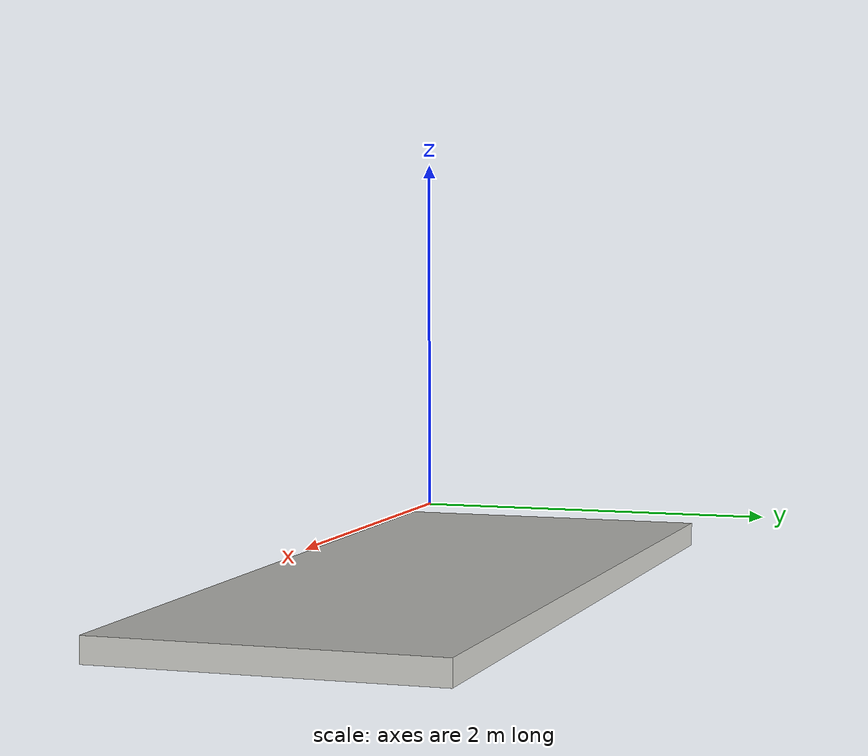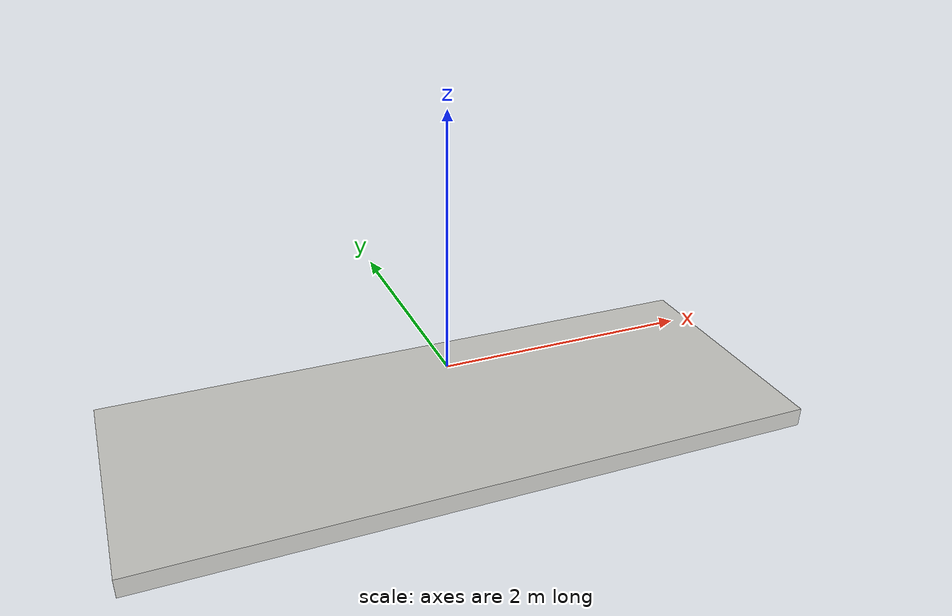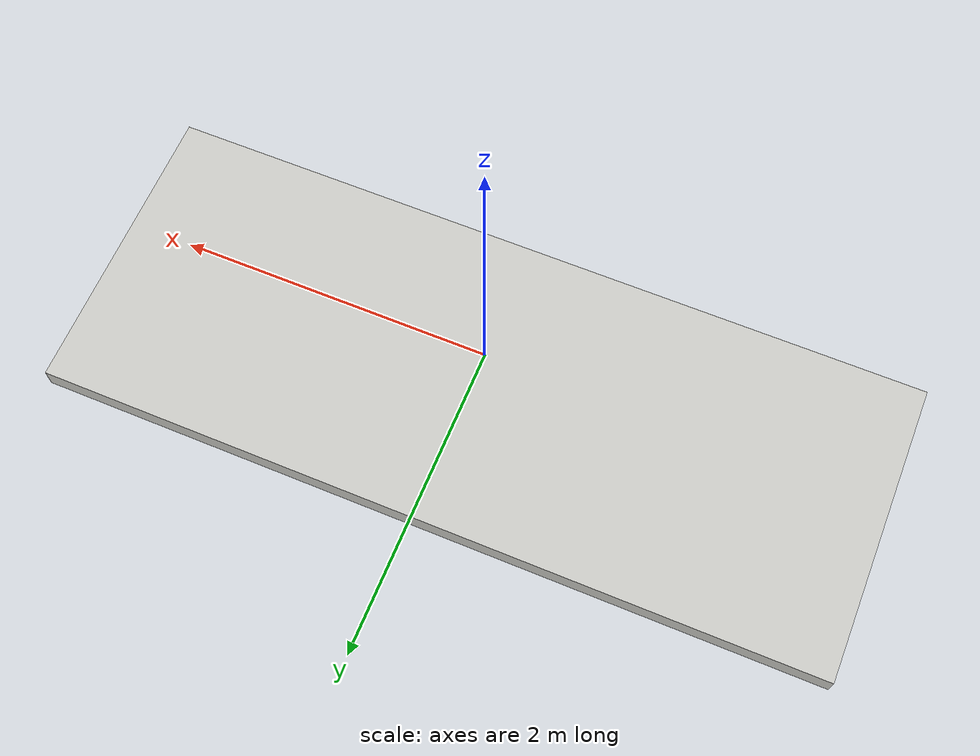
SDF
<?xml version='1.0'?>
<sdf version='1.6'>
  <model name='floor_5_2'>
    <pose frame=''>0 0 -0.476 1.57 0 0</pose>
    <link name='floor_45'>
      <collision name='floor_45_Collision'>
        <geometry>
          <box>
            <size>5.2 0.15 2</size>
          </box>
        </geometry>
        <pose frame=''>0 0 0 0 -0 0</pose>
      </collision>
      <visual name='floor_45_Visual'>
        <pose frame=''>0 0 0 0 -0 0</pose>
        <geometry>
          <box>
            <size>5.2 0.15 2</size>
          </box>
        </geometry>
        <material>
          <script>
            <uri>file://media/materials/scripts/gazebo.material</uri>
            <name>Gazebo/CeilingTiled</name>
          </script>
          <ambient>1 1 1 1</ambient>
        </material>
        <meta>
          <layer>0</layer>
        </meta>
      </visual>
      <pose frame=''>0 0 0 0 -0 0</pose>
    </link>
    <static>1</static>
  </model>
</sdf>
